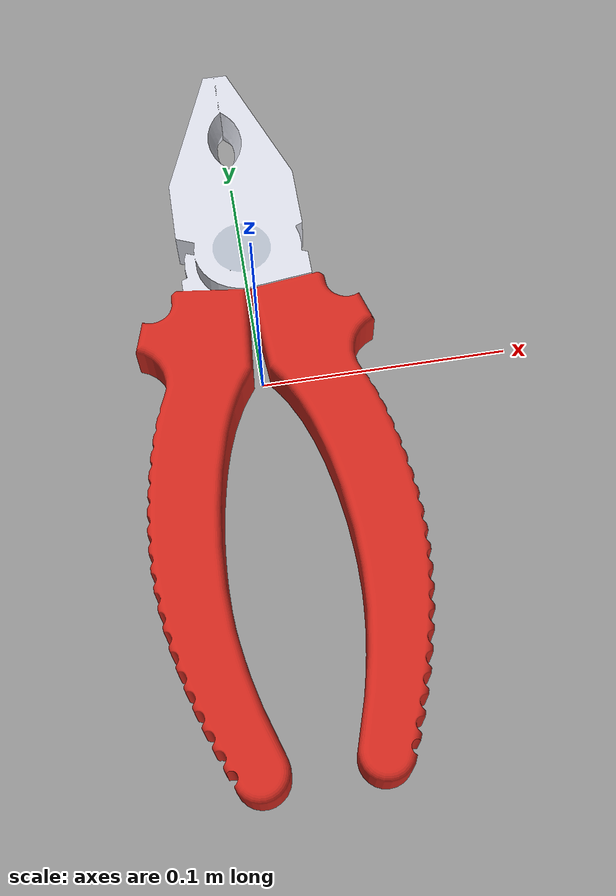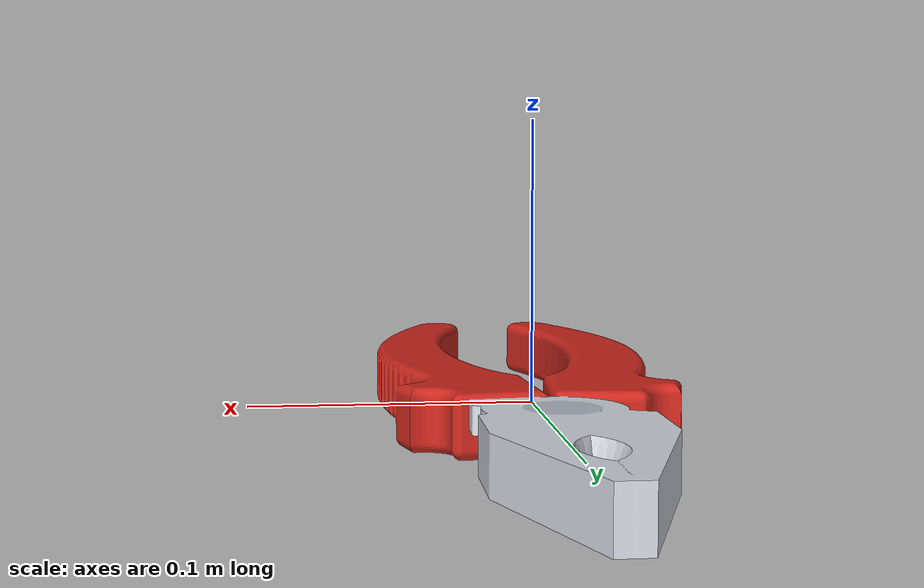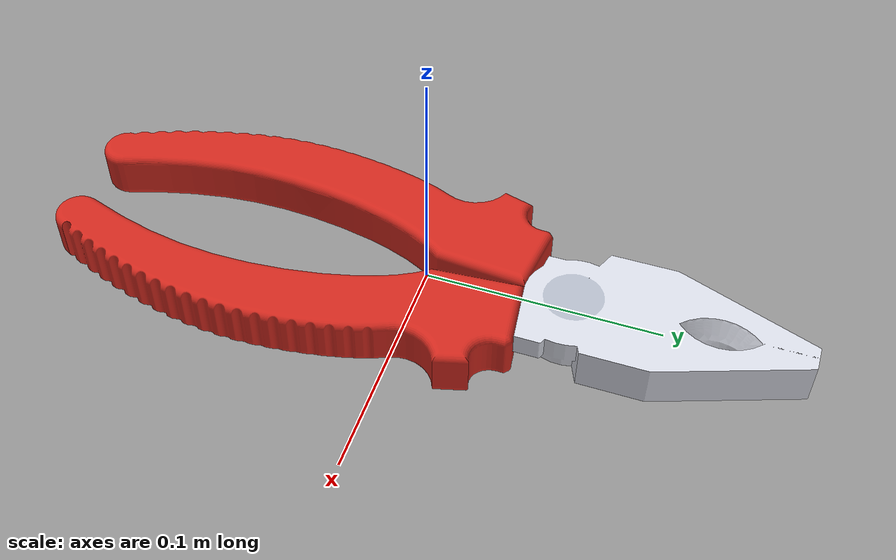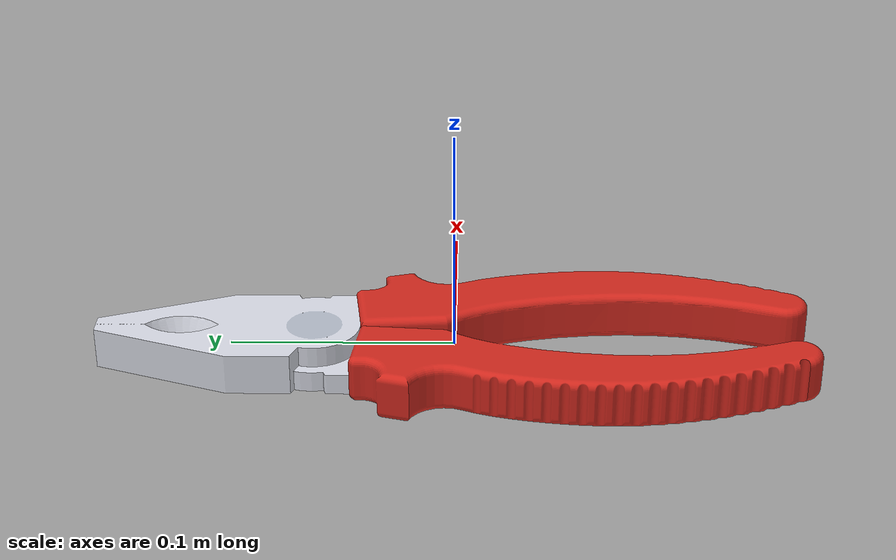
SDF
<?xml version="1.0"?>
<sdf version="1.6">
  <model name="tooling_hand_tools">
    <link name="link">
      <inertial><mass>1.12</mass><inertia><ixx>0.01152</ixx><ixy>0</ixy><ixz>0</ixz><iyy>0.00256</iyy><iyz>0</iyz><izz>0.01344</izz></inertia></inertial>
      <collision name="collision"><pose>0 0 -0.011 0 0 0</pose><geometry><mesh><uri>model://tooling_hand_tools/meshes/pliers_closed.dae</uri><scale>2 2 2</scale></mesh></geometry><surface><friction><ode><mu>1.0</mu><mu2>1.0</mu2></ode></friction><contact><ode><kp>1e6</kp><kd>1.0</kd><min_depth>0.001</min_depth><max_vel>0.01</max_vel></ode></contact></surface></collision>
      <visual name="imported_tool_mesh"><pose>0 0 -0.011 0 0 0</pose><geometry><mesh><uri>model://tooling_hand_tools/meshes/pliers_closed.dae</uri><scale>2 2 2</scale></mesh></geometry></visual>
    </link>
  </model>
</sdf>
